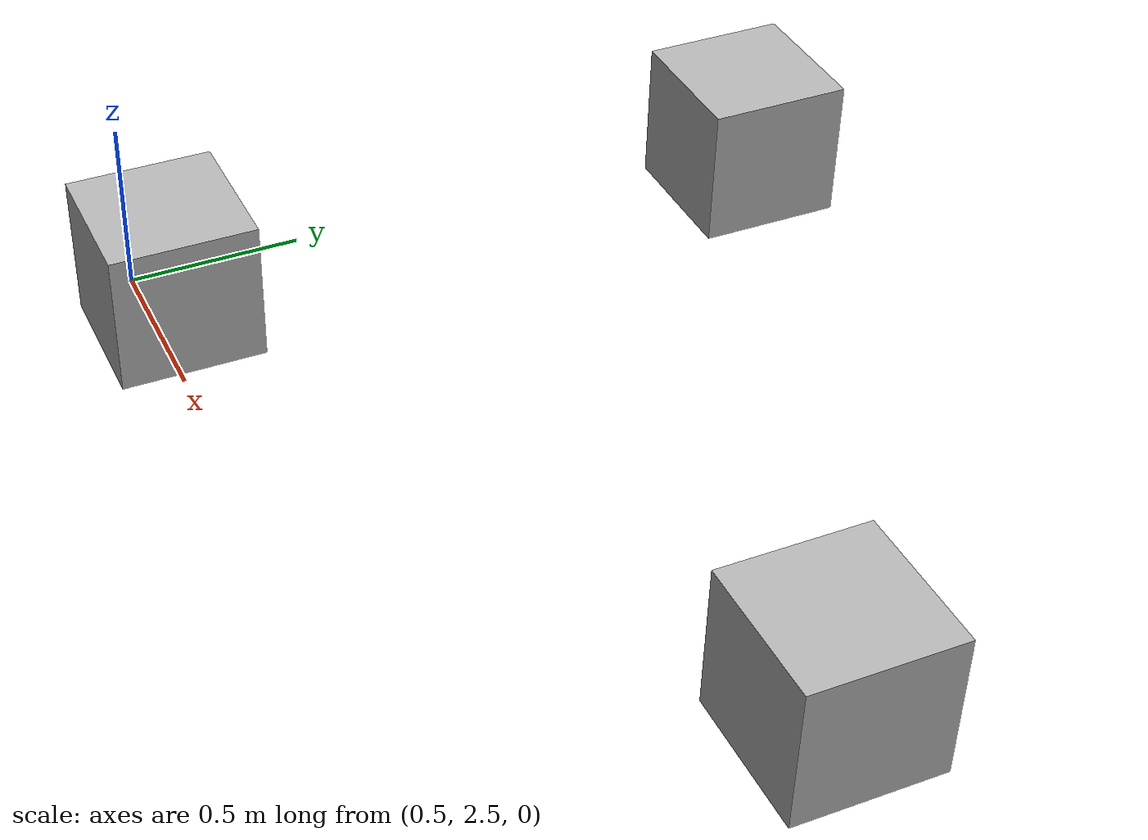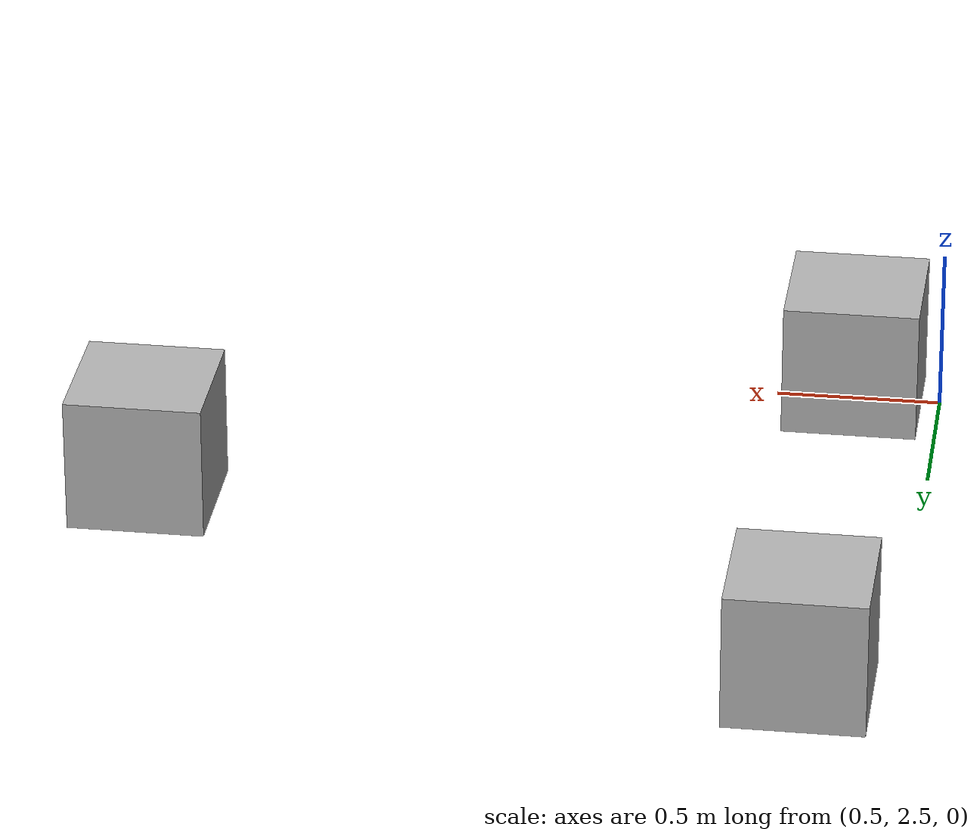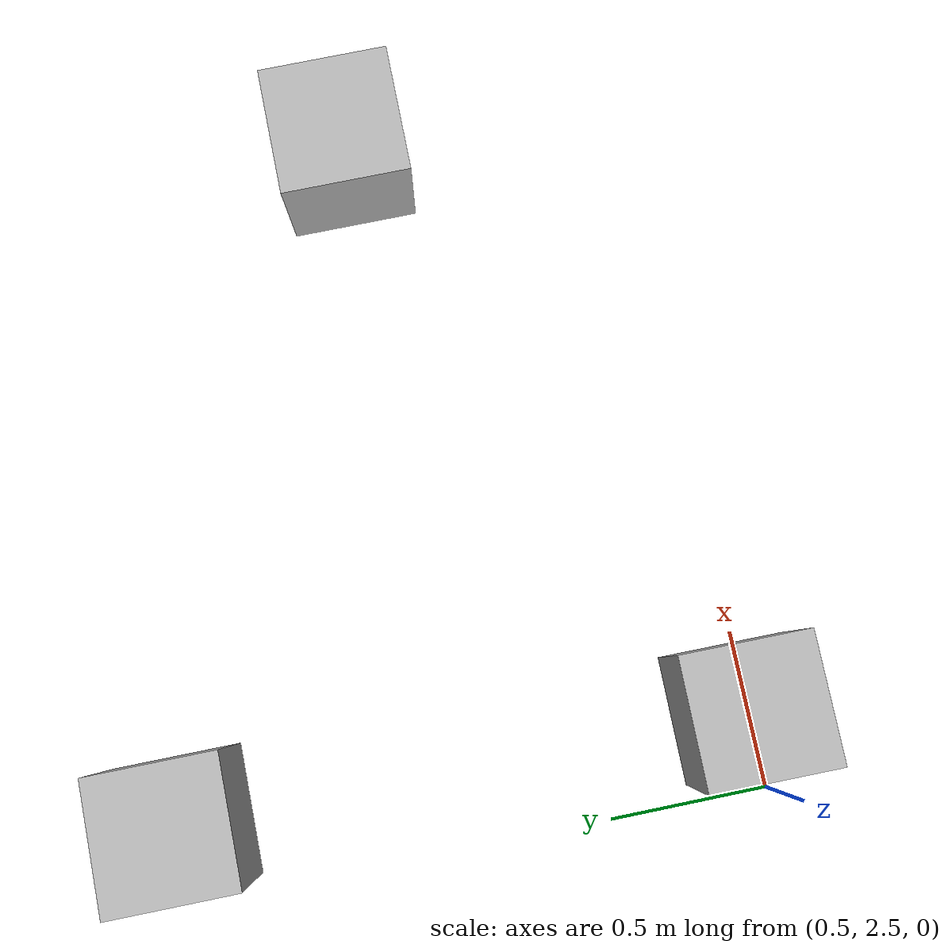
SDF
<?xml version="1.0" ?>
<sdf version="1.7">
  <world name="occupancy_world">
    <!-- Physics settings -->
    <physics type="ode">
      <max_step_size>0.003</max_step_size>
      <real_time_factor>1.0</real_time_factor>
    </physics>

    <!-- Required plugins -->
    <plugin name="ignition::gazebo::systems::Physics" filename="libignition-gazebo-physics-system.so"/>
    <plugin name="ignition::gazebo::systems::UserCommands" filename="libignition-gazebo-user-commands-system.so"/>
    <plugin name="ignition::gazebo::systems::SceneBroadcaster" filename="libignition-gazebo-scene-broadcaster-system.so"/>
    <plugin name="ignition::gazebo::systems::Sensors" filename="libignition-gazebo-sensors-system.so">
      <render_engine>ogre2</render_engine>
    </plugin>
    <plugin name="ignition::gazebo::systems::Imu" filename="libignition-gazebo-imu-system.so"/>
    <plugin name="ignition::gazebo::systems::NavSat" filename="libignition-gazebo-navsat-system.so"/>

    <!-- Scene settings -->
    <scene>
      <ambient>1 1 1 1</ambient>
      <background>0.3 0.7 0.9 1</background>
      <shadows>0</shadows>
      <grid>true</grid>
    </scene>

    <!-- Spherical coordinates (optional) -->
    <spherical_coordinates>
      <surface_model>EARTH_WGS84</surface_model>
      <world_frame_orientation>ENU</world_frame_orientation>
      <latitude_deg>-22.986687</latitude_deg>
      <longitude_deg>-43.202501</longitude_deg>
      <elevation>0</elevation>
      <heading_deg>0</heading_deg>
    </spherical_coordinates>

    <!-- Ground plane -->
    <model name="ground_plane">
      <static>true</static>
      <link name="link">
        <collision name="collision">
          <geometry>
            <plane>
              <normal>0 0 1</normal>
              <size>100 100</size>
            </plane>
          </geometry>
        </collision>
      </link>
      <pose>0 0 0 0 0 0</pose>
    </model>

    <!-- Obstacle 1: centered at (0.762, 2.54) -->
    <model name="obstacle_1">
      <static>true</static>
      <link name="link">
        <!-- The z-coordinate is half the obstacle's height so that the box sits on the ground -->
        <pose>0.762 2.54 0.205 0 0 0</pose>
        <collision name="collision">
          <geometry>
            <box>
              <size>0.41 0.41 0.41</size>
            </box>
          </geometry>
          <surface>
            <contact>
              <collide_without_contact>true</collide_without_contact>
            </contact>
          </surface>
        </collision>
        <visual name="visual">
          <geometry>
            <box>
              <size>0.41 0.41 0.41</size>
            </box>
          </geometry>
          <material>
            <ambient>0.7 0.7 0.7 1</ambient>
            <diffuse>0.7 0.7 0.7 1</diffuse>
          </material>
        </visual>
      </link>
    </model>

    <!-- Obstacle 2: centered at (2.794, 3.429) -->
    <model name="obstacle_2">
      <static>true</static>
      <link name="link">
        <pose>2.794 3.429 0.205 0 0 0</pose>
        <collision name="collision">
          <geometry>
            <box>
              <size>0.41 0.41 0.41</size>
            </box>
          </geometry>
          <surface>
            <contact>
              <collide_without_contact>true</collide_without_contact>
            </contact>
          </surface>
        </collision>
        <visual name="visual">
          <geometry>
            <box>
              <size>0.41 0.41 0.41</size>
            </box>
          </geometry>
          <material>
            <ambient>0.7 0.7 0.7 1</ambient>
            <diffuse>0.7 0.7 0.7 1</diffuse>
          </material>
        </visual>
      </link>
    </model>

    <!-- Obstacle 3: centered at (0.762, 4.318) -->
    <model name="obstacle_3">
      <static>true</static>
      <link name="link">
        <pose>0.762 4.318 0.205 0 0 0</pose>
        <collision name="collision">
          <geometry>
            <box>
              <size>0.41 0.41 0.41</size>
            </box>
          </geometry>
          <surface>
            <contact>
              <collide_without_contact>true</collide_without_contact>
            </contact>
          </surface>
        </collision>
        <visual name="visual">
          <geometry>
            <box>
              <size>0.41 0.41 0.41</size>
            </box>
          </geometry>
          <material>
            <ambient>0.7 0.7 0.7 1</ambient>
            <diffuse>0.7 0.7 0.7 1</diffuse>
          </material>
        </visual>
      </link>
    </model>

  </world>
</sdf>
